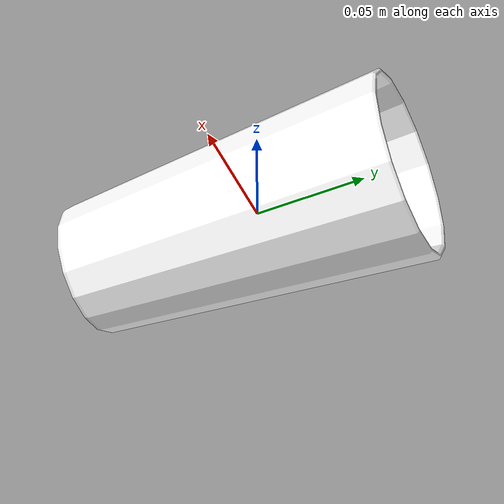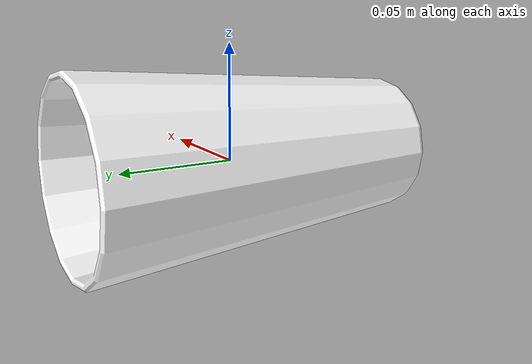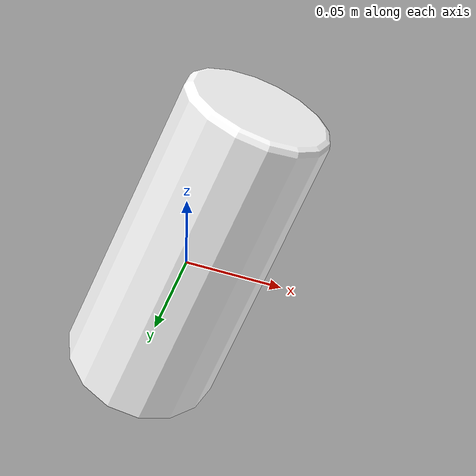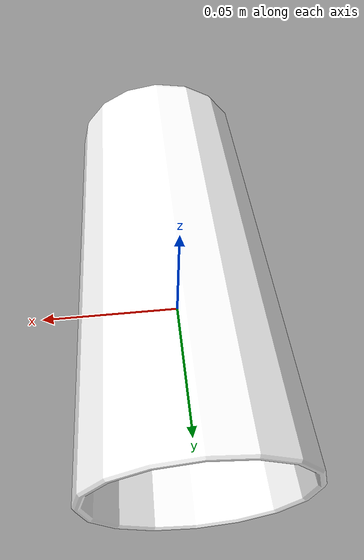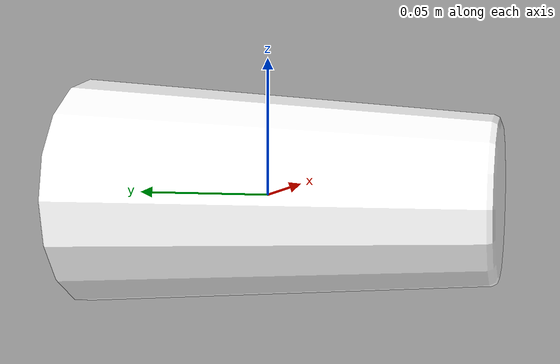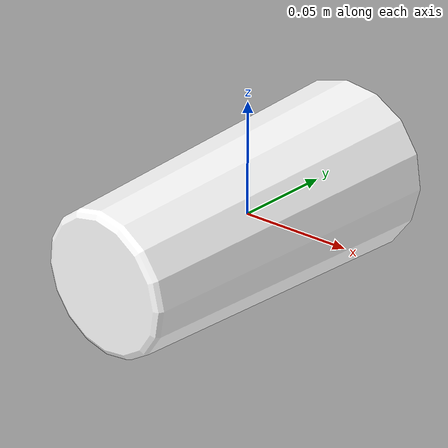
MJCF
<mujoco model="RoboTHOR_cup_ai2_v">
  <default>
    <default class="visual">
      <geom group="2" type="mesh" contype="0" conaffinity="0"/>
    </default>
    <default class="collision">
      <geom group="3" type="mesh"/>
    </default>
  </default>
  <asset>
    <material name="RoboTHOR_Cup_Primary_AI2_Mat" specular="0.5" shininess="0.5" rgba="1 1 1 1.0"/>
    <mesh file="RoboTHOR_cup_ai2_v.obj"/>
    <mesh file="RoboTHOR_cup_ai2_v_collision_0.obj"/>
    <mesh file="RoboTHOR_cup_ai2_v_collision_1.obj"/>
    <mesh file="RoboTHOR_cup_ai2_v_collision_2.obj"/>
    <mesh file="RoboTHOR_cup_ai2_v_collision_3.obj"/>
    <mesh file="RoboTHOR_cup_ai2_v_collision_4.obj"/>
    <mesh file="RoboTHOR_cup_ai2_v_collision_5.obj"/>
    <mesh file="RoboTHOR_cup_ai2_v_collision_6.obj"/>
    <mesh file="RoboTHOR_cup_ai2_v_collision_7.obj"/>
    <mesh file="RoboTHOR_cup_ai2_v_collision_8.obj"/>
    <mesh file="RoboTHOR_cup_ai2_v_collision_9.obj"/>
    <mesh file="RoboTHOR_cup_ai2_v_collision_10.obj"/>
    <mesh file="RoboTHOR_cup_ai2_v_collision_11.obj"/>
    <mesh file="RoboTHOR_cup_ai2_v_collision_12.obj"/>
  </asset>
  <worldbody>
    <body name="RoboTHOR_cup_ai2_v">
      <geom material="RoboTHOR_Cup_Primary_AI2_Mat" mesh="RoboTHOR_cup_ai2_v" class="visual"/>
      <geom mesh="RoboTHOR_cup_ai2_v_collision_0" rgba="0.04254376196441467 0.5681502771850335 0.41109990708448774 1" class="collision"/>
      <geom mesh="RoboTHOR_cup_ai2_v_collision_1" rgba="0.35202155922088163 0.7504978818265987 0.18420769609666177 1" class="collision"/>
      <geom mesh="RoboTHOR_cup_ai2_v_collision_2" rgba="0.4879704517768607 0.057948387190959405 0.6925026160568691 1" class="collision"/>
      <geom mesh="RoboTHOR_cup_ai2_v_collision_3" rgba="0.6655915780073365 0.5530636688498863 0.006958740718523204 1" class="collision"/>
      <geom mesh="RoboTHOR_cup_ai2_v_collision_4" rgba="0.6387673796494892 0.45291484749383637 0.3984107465533062 1" class="collision"/>
      <geom mesh="RoboTHOR_cup_ai2_v_collision_5" rgba="0.6265981713777791 0.8263334437688974 0.718512312886942 1" class="collision"/>
      <geom mesh="RoboTHOR_cup_ai2_v_collision_6" rgba="0.8106239821363065 0.27935741833606553 0.2072753426650088 1" class="collision"/>
      <geom mesh="RoboTHOR_cup_ai2_v_collision_7" rgba="0.6931210909838674 0.01000059395591979 0.6549959350731683 1" class="collision"/>
      <geom mesh="RoboTHOR_cup_ai2_v_collision_8" rgba="0.8728605230794655 0.649690143521238 0.4151073237801852 1" class="collision"/>
      <geom mesh="RoboTHOR_cup_ai2_v_collision_9" rgba="0.2624032406447928 0.9708545552579445 0.8325252956880538 1" class="collision"/>
      <geom mesh="RoboTHOR_cup_ai2_v_collision_10" rgba="0.05347592576237148 0.08271454681494705 0.9678818648809122 1" class="collision"/>
      <geom mesh="RoboTHOR_cup_ai2_v_collision_11" rgba="0.3290350079132023 0.3605867988819934 0.7475456127240387 1" class="collision"/>
      <geom mesh="RoboTHOR_cup_ai2_v_collision_12" rgba="0.9292712288621026 0.7185117019315074 0.012070865822876753 1" class="collision"/>
    </body>
  </worldbody>
</mujoco>
